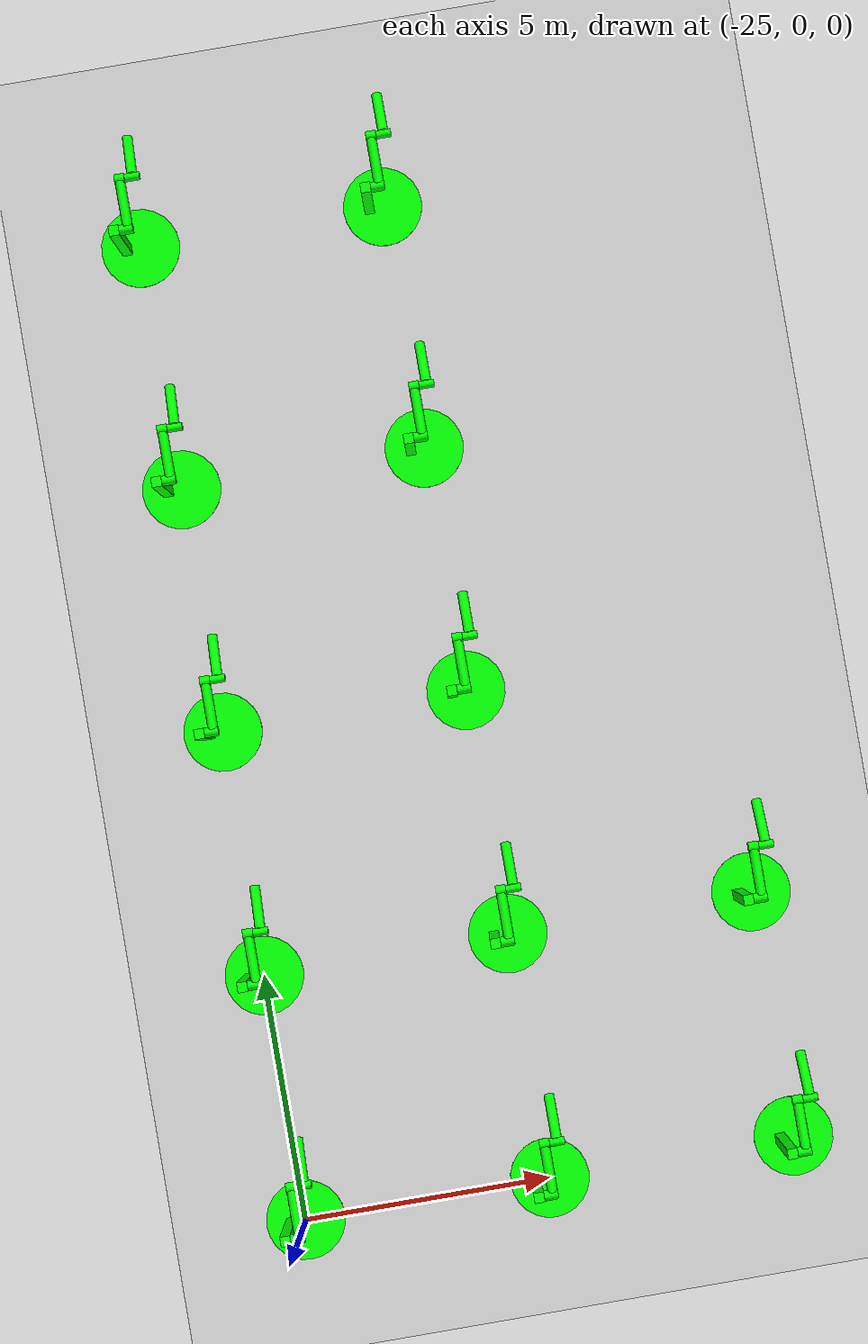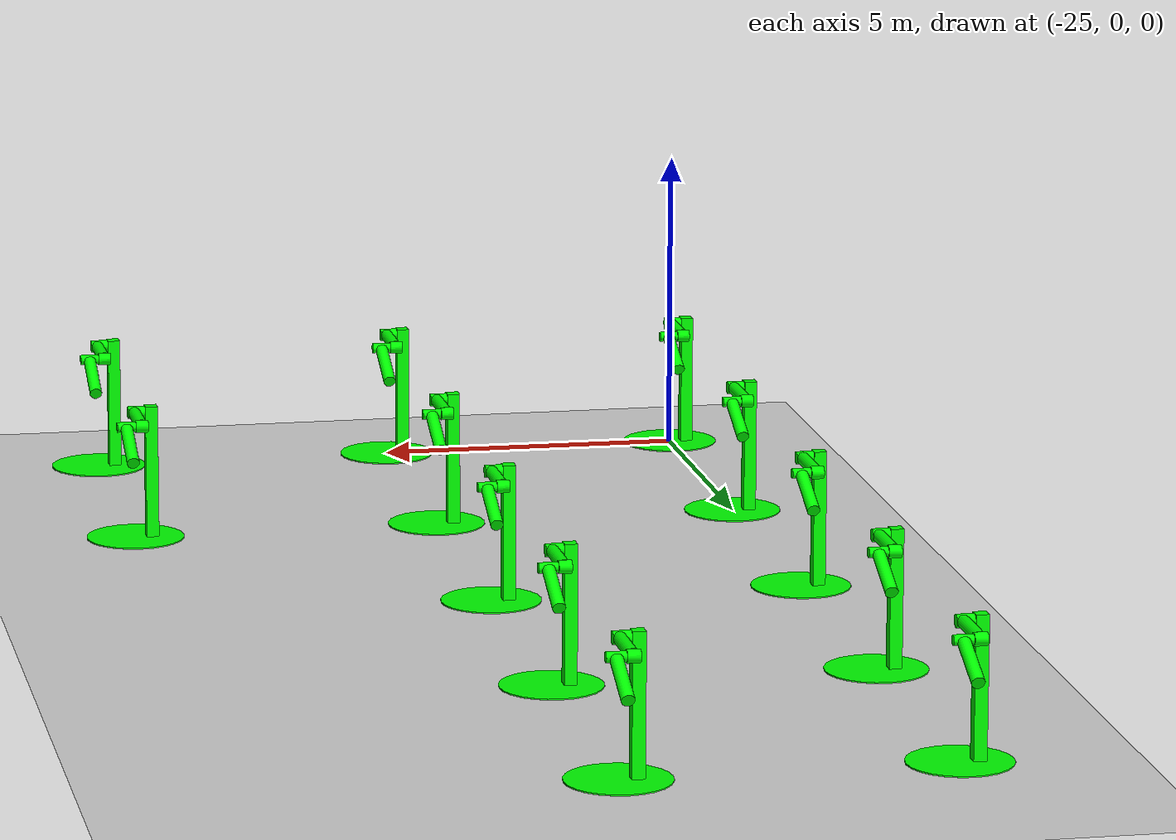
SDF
<sdf version="1.6">
 <world name="double_pendulums">
  <model name="ground_plane">
   <static>true</static>
   <link name="link">
    <collision name="collision">
     <geometry><plane><normal>0 0 1</normal><size>100 100</size></plane></geometry>
    </collision>
    <visual name="visual">
     <geometry><plane><normal>0 0 1</normal><size>100 100</size></plane></geometry>
     <material>
      <ambient>0.8 0.8 0.8 1</ambient>
      <diffuse>0.8 0.8 0.8 1</diffuse>
      <specular>0.8 0.8 0.8 1</specular>
     </material>
    </visual>
   </link>
  </model>
  <model name="dbl_pendulum_0">
   <pose>-25 0 0 0 0 0</pose>
   <link name="base">
    <inertial><mass>100</mass></inertial>
    <visual name="vis_plate_on_ground">
     <pose>0 0 0.01 0 0 0</pose>
     <geometry><cylinder><radius>0.8</radius><length>0.02</length></cylinder></geometry>
     <material><ambient>0 1 0 1</ambient><diffuse>0 1 0 1</diffuse><specular>0 1 0 1</specular></material>
    </visual>
    <visual name="vis_pole">
     <pose>-0.275 0 1.1 0 0 0</pose>
     <geometry><box><size>0.2 0.2 2.2</size></box></geometry>
     <material><ambient>0 1 0 1</ambient><diffuse>0 1 0 1</diffuse><specular>0 1 0 1</specular></material>
    </visual>
    <collision name="col_plate_on_ground">
     <pose>0 0 0.01 0 0 0</pose>
     <geometry><cylinder><radius>0.8</radius><length>0.02</length></cylinder></geometry>
    </collision>
    <collision name="col_pole">
     <pose>-0.275 0 1.1 0 0 0</pose>
     <geometry><box><size>0.2 0.2 2.2</size></box></geometry>
    </collision>
   </link>
   <link name="upper_link">
    <pose>0 0 2.1 -1.5708 0 0</pose>
    <inertial><pose>0 0 0.5 0 0 0</pose></inertial>
    <visual name="vis_upper_joint">
     <pose>-0.05 0 0 0 1.5708 0</pose>
     <geometry><cylinder><radius>0.1</radius><length>0.3</length></cylinder></geometry>
     <material><ambient>0 1 0 1</ambient><diffuse>0 1 0 1</diffuse><specular>0 1 0 1</specular></material>
    </visual>
    <visual name="vis_lower_joint">
     <pose>0 0 1.0 0 1.5708 0</pose>
     <geometry><cylinder><radius>0.1</radius><length>0.2</length></cylinder></geometry>
     <material><ambient>0 1 0 1</ambient><diffuse>0 1 0 1</diffuse><specular>0 1 0 1</specular></material>
    </visual>
    <visual name="vis_cylinder">
     <pose>0 0 0.5 0 0 0</pose>
     <geometry><cylinder><radius>0.1</radius><length>0.9</length></cylinder></geometry>
     <material><ambient>0 1 0 1</ambient><diffuse>0 1 0 1</diffuse><specular>0 1 0 1</specular></material>
    </visual>
    <collision name="col_upper_joint">
     <pose>-0.05 0 0 0 1.5708 0</pose>
     <geometry><cylinder><radius>0.1</radius><length>0.3</length></cylinder></geometry>
    </collision>
    <collision name="col_lower_joint">
     <pose>0 0 1.0 0 1.5708 0</pose>
     <geometry><cylinder><radius>0.1</radius><length>0.2</length></cylinder></geometry>
    </collision>
    <collision name="col_cylinder">
     <pose>0 0 0.5 0 0 0</pose>
     <geometry><cylinder><radius>0.1</radius><length>0.9</length></cylinder></geometry>
    </collision>
   </link>
   <link name="lower_link">
    <pose>0.25 1.0 2.1 -2 0 0</pose>
    <inertial><pose>0 0 0.5 0 0 0</pose></inertial>
    <visual name="vis_lower_joint">
     <pose>0 0 0 0 1.5708 0</pose>
     <geometry><cylinder><radius>0.08</radius><length>0.3</length></cylinder></geometry>
     <material><ambient>0 1 0 1</ambient><diffuse>0 1 0 1</diffuse><specular>0 1 0 1</specular></material>
    </visual>
    <visual name="vis_cylinder">
     <pose>0 0 0.5 0 0 0</pose>
     <geometry><cylinder><radius>0.1</radius><length>0.9</length></cylinder></geometry>
     <material><ambient>0 1 0 1</ambient><diffuse>0 1 0 1</diffuse><specular>0 1 0 1</specular></material>
    </visual>
    <collision name="col_lower_joint">
     <pose>0 0 0 0 1.5708 0</pose>
     <geometry><cylinder><radius>0.08</radius><length>0.3</length></cylinder></geometry>
    </collision>
    <collision name="col_cylinder">
     <pose>0 0 0.5 0 0 0</pose>
     <geometry><cylinder><radius>0.1</radius><length>0.9</length></cylinder></geometry>
    </collision>
   </link>
   <joint name="upper_joint" type="revolute">
    <parent>base</parent>
    <child>upper_link</child>
    <axis><xyz>1.0 0 0</xyz></axis>
   </joint>
   <joint name="lower_joint" type="revolute">
    <parent>upper_link</parent>
    <child>lower_link</child>
    <axis><xyz>1.0 0 0</xyz></axis>
   </joint>
  </model>
  <model name="dbl_pendulum_1">
   <pose>-20 0 0 0 0 0</pose>
   <link name="base">
    <inertial><mass>100</mass></inertial>
    <visual name="vis_plate_on_ground">
     <pose>0 0 0.01 0 0 0</pose>
     <geometry><cylinder><radius>0.8</radius><length>0.02</length></cylinder></geometry>
     <material><ambient>0 1 0 1</ambient><diffuse>0 1 0 1</diffuse><specular>0 1 0 1</specular></material>
    </visual>
    <visual name="vis_pole">
     <pose>-0.275 0 1.1 0 0 0</pose>
     <geometry><box><size>0.2 0.2 2.2</size></box></geometry>
     <material><ambient>0 1 0 1</ambient><diffuse>0 1 0 1</diffuse><specular>0 1 0 1</specular></material>
    </visual>
    <collision name="col_plate_on_ground">
     <pose>0 0 0.01 0 0 0</pose>
     <geometry><cylinder><radius>0.8</radius><length>0.02</length></cylinder></geometry>
    </collision>
    <collision name="col_pole">
     <pose>-0.275 0 1.1 0 0 0</pose>
     <geometry><box><size>0.2 0.2 2.2</size></box></geometry>
    </collision>
   </link>
   <link name="upper_link">
    <pose>0 0 2.1 -1.5708 0 0</pose>
    <inertial><pose>0 0 0.5 0 0 0</pose></inertial>
    <visual name="vis_upper_joint">
     <pose>-0.05 0 0 0 1.5708 0</pose>
     <geometry><cylinder><radius>0.1</radius><length>0.3</length></cylinder></geometry>
     <material><ambient>0 1 0 1</ambient><diffuse>0 1 0 1</diffuse><specular>0 1 0 1</specular></material>
    </visual>
    <visual name="vis_lower_joint">
     <pose>0 0 1.0 0 1.5708 0</pose>
     <geometry><cylinder><radius>0.1</radius><length>0.2</length></cylinder></geometry>
     <material><ambient>0 1 0 1</ambient><diffuse>0 1 0 1</diffuse><specular>0 1 0 1</specular></material>
    </visual>
    <visual name="vis_cylinder">
     <pose>0 0 0.5 0 0 0</pose>
     <geometry><cylinder><radius>0.1</radius><length>0.9</length></cylinder></geometry>
     <material><ambient>0 1 0 1</ambient><diffuse>0 1 0 1</diffuse><specular>0 1 0 1</specular></material>
    </visual>
    <collision name="col_upper_joint">
     <pose>-0.05 0 0 0 1.5708 0</pose>
     <geometry><cylinder><radius>0.1</radius><length>0.3</length></cylinder></geometry>
    </collision>
    <collision name="col_lower_joint">
     <pose>0 0 1.0 0 1.5708 0</pose>
     <geometry><cylinder><radius>0.1</radius><length>0.2</length></cylinder></geometry>
    </collision>
    <collision name="col_cylinder">
     <pose>0 0 0.5 0 0 0</pose>
     <geometry><cylinder><radius>0.1</radius><length>0.9</length></cylinder></geometry>
    </collision>
   </link>
   <link name="lower_link">
    <pose>0.25 1.0 2.1 -2 0 0</pose>
    <inertial><pose>0 0 0.5 0 0 0</pose></inertial>
    <visual name="vis_lower_joint">
     <pose>0 0 0 0 1.5708 0</pose>
     <geometry><cylinder><radius>0.08</radius><length>0.3</length></cylinder></geometry>
     <material><ambient>0 1 0 1</ambient><diffuse>0 1 0 1</diffuse><specular>0 1 0 1</specular></material>
    </visual>
    <visual name="vis_cylinder">
     <pose>0 0 0.5 0 0 0</pose>
     <geometry><cylinder><radius>0.1</radius><length>0.9</length></cylinder></geometry>
     <material><ambient>0 1 0 1</ambient><diffuse>0 1 0 1</diffuse><specular>0 1 0 1</specular></material>
    </visual>
    <collision name="col_lower_joint">
     <pose>0 0 0 0 1.5708 0</pose>
     <geometry><cylinder><radius>0.08</radius><length>0.3</length></cylinder></geometry>
    </collision>
    <collision name="col_cylinder">
     <pose>0 0 0.5 0 0 0</pose>
     <geometry><cylinder><radius>0.1</radius><length>0.9</length></cylinder></geometry>
    </collision>
   </link>
   <joint name="upper_joint" type="revolute">
    <parent>base</parent>
    <child>upper_link</child>
    <axis><xyz>1.0 0 0</xyz></axis>
   </joint>
   <joint name="lower_joint" type="revolute">
    <parent>upper_link</parent>
    <child>lower_link</child>
    <axis><xyz>1.0 0 0</xyz></axis>
   </joint>
  </model>
  <model name="dbl_pendulum_2">
   <pose>-15 0 0 0 0 0</pose>
   <link name="base">
    <inertial><mass>100</mass></inertial>
    <visual name="vis_plate_on_ground">
     <pose>0 0 0.01 0 0 0</pose>
     <geometry><cylinder><radius>0.8</radius><length>0.02</length></cylinder></geometry>
     <material><ambient>0 1 0 1</ambient><diffuse>0 1 0 1</diffuse><specular>0 1 0 1</specular></material>
    </visual>
    <visual name="vis_pole">
     <pose>-0.275 0 1.1 0 0 0</pose>
     <geometry><box><size>0.2 0.2 2.2</size></box></geometry>
     <material><ambient>0 1 0 1</ambient><diffuse>0 1 0 1</diffuse><specular>0 1 0 1</specular></material>
    </visual>
    <collision name="col_plate_on_ground">
     <pose>0 0 0.01 0 0 0</pose>
     <geometry><cylinder><radius>0.8</radius><length>0.02</length></cylinder></geometry>
    </collision>
    <collision name="col_pole">
     <pose>-0.275 0 1.1 0 0 0</pose>
     <geometry><box><size>0.2 0.2 2.2</size></box></geometry>
    </collision>
   </link>
   <link name="upper_link">
    <pose>0 0 2.1 -1.5708 0 0</pose>
    <inertial><pose>0 0 0.5 0 0 0</pose></inertial>
    <visual name="vis_upper_joint">
     <pose>-0.05 0 0 0 1.5708 0</pose>
     <geometry><cylinder><radius>0.1</radius><length>0.3</length></cylinder></geometry>
     <material><ambient>0 1 0 1</ambient><diffuse>0 1 0 1</diffuse><specular>0 1 0 1</specular></material>
    </visual>
    <visual name="vis_lower_joint">
     <pose>0 0 1.0 0 1.5708 0</pose>
     <geometry><cylinder><radius>0.1</radius><length>0.2</length></cylinder></geometry>
     <material><ambient>0 1 0 1</ambient><diffuse>0 1 0 1</diffuse><specular>0 1 0 1</specular></material>
    </visual>
    <visual name="vis_cylinder">
     <pose>0 0 0.5 0 0 0</pose>
     <geometry><cylinder><radius>0.1</radius><length>0.9</length></cylinder></geometry>
     <material><ambient>0 1 0 1</ambient><diffuse>0 1 0 1</diffuse><specular>0 1 0 1</specular></material>
    </visual>
    <collision name="col_upper_joint">
     <pose>-0.05 0 0 0 1.5708 0</pose>
     <geometry><cylinder><radius>0.1</radius><length>0.3</length></cylinder></geometry>
    </collision>
    <collision name="col_lower_joint">
     <pose>0 0 1.0 0 1.5708 0</pose>
     <geometry><cylinder><radius>0.1</radius><length>0.2</length></cylinder></geometry>
    </collision>
    <collision name="col_cylinder">
     <pose>0 0 0.5 0 0 0</pose>
     <geometry><cylinder><radius>0.1</radius><length>0.9</length></cylinder></geometry>
    </collision>
   </link>
   <link name="lower_link">
    <pose>0.25 1.0 2.1 -2 0 0</pose>
    <inertial><pose>0 0 0.5 0 0 0</pose></inertial>
    <visual name="vis_lower_joint">
     <pose>0 0 0 0 1.5708 0</pose>
     <geometry><cylinder><radius>0.08</radius><length>0.3</length></cylinder></geometry>
     <material><ambient>0 1 0 1</ambient><diffuse>0 1 0 1</diffuse><specular>0 1 0 1</specular></material>
    </visual>
    <visual name="vis_cylinder">
     <pose>0 0 0.5 0 0 0</pose>
     <geometry><cylinder><radius>0.1</radius><length>0.9</length></cylinder></geometry>
     <material><ambient>0 1 0 1</ambient><diffuse>0 1 0 1</diffuse><specular>0 1 0 1</specular></material>
    </visual>
    <collision name="col_lower_joint">
     <pose>0 0 0 0 1.5708 0</pose>
     <geometry><cylinder><radius>0.08</radius><length>0.3</length></cylinder></geometry>
    </collision>
    <collision name="col_cylinder">
     <pose>0 0 0.5 0 0 0</pose>
     <geometry><cylinder><radius>0.1</radius><length>0.9</length></cylinder></geometry>
    </collision>
   </link>
   <joint name="upper_joint" type="revolute">
    <parent>base</parent>
    <child>upper_link</child>
    <axis><xyz>1.0 0 0</xyz></axis>
   </joint>
   <joint name="lower_joint" type="revolute">
    <parent>upper_link</parent>
    <child>lower_link</child>
    <axis><xyz>1.0 0 0</xyz></axis>
   </joint>
  </model>
  <model name="dbl_pendulum_10">
   <pose>-25 5 0 0 0 0</pose>
   <link name="base">
    <inertial><mass>100</mass></inertial>
    <visual name="vis_plate_on_ground">
     <pose>0 0 0.01 0 0 0</pose>
     <geometry><cylinder><radius>0.8</radius><length>0.02</length></cylinder></geometry>
     <material><ambient>0 1 0 1</ambient><diffuse>0 1 0 1</diffuse><specular>0 1 0 1</specular></material>
    </visual>
    <visual name="vis_pole">
     <pose>-0.275 0 1.1 0 0 0</pose>
     <geometry><box><size>0.2 0.2 2.2</size></box></geometry>
     <material><ambient>0 1 0 1</ambient><diffuse>0 1 0 1</diffuse><specular>0 1 0 1</specular></material>
    </visual>
    <collision name="col_plate_on_ground">
     <pose>0 0 0.01 0 0 0</pose>
     <geometry><cylinder><radius>0.8</radius><length>0.02</length></cylinder></geometry>
    </collision>
    <collision name="col_pole">
     <pose>-0.275 0 1.1 0 0 0</pose>
     <geometry><box><size>0.2 0.2 2.2</size></box></geometry>
    </collision>
   </link>
   <link name="upper_link">
    <pose>0 0 2.1 -1.5708 0 0</pose>
    <inertial><pose>0 0 0.5 0 0 0</pose></inertial>
    <visual name="vis_upper_joint">
     <pose>-0.05 0 0 0 1.5708 0</pose>
     <geometry><cylinder><radius>0.1</radius><length>0.3</length></cylinder></geometry>
     <material><ambient>0 1 0 1</ambient><diffuse>0 1 0 1</diffuse><specular>0 1 0 1</specular></material>
    </visual>
    <visual name="vis_lower_joint">
     <pose>0 0 1.0 0 1.5708 0</pose>
     <geometry><cylinder><radius>0.1</radius><length>0.2</length></cylinder></geometry>
     <material><ambient>0 1 0 1</ambient><diffuse>0 1 0 1</diffuse><specular>0 1 0 1</specular></material>
    </visual>
    <visual name="vis_cylinder">
     <pose>0 0 0.5 0 0 0</pose>
     <geometry><cylinder><radius>0.1</radius><length>0.9</length></cylinder></geometry>
     <material><ambient>0 1 0 1</ambient><diffuse>0 1 0 1</diffuse><specular>0 1 0 1</specular></material>
    </visual>
    <collision name="col_upper_joint">
     <pose>-0.05 0 0 0 1.5708 0</pose>
     <geometry><cylinder><radius>0.1</radius><length>0.3</length></cylinder></geometry>
    </collision>
    <collision name="col_lower_joint">
     <pose>0 0 1.0 0 1.5708 0</pose>
     <geometry><cylinder><radius>0.1</radius><length>0.2</length></cylinder></geometry>
    </collision>
    <collision name="col_cylinder">
     <pose>0 0 0.5 0 0 0</pose>
     <geometry><cylinder><radius>0.1</radius><length>0.9</length></cylinder></geometry>
    </collision>
   </link>
   <link name="lower_link">
    <pose>0.25 1.0 2.1 -2 0 0</pose>
    <inertial><pose>0 0 0.5 0 0 0</pose></inertial>
    <visual name="vis_lower_joint">
     <pose>0 0 0 0 1.5708 0</pose>
     <geometry><cylinder><radius>0.08</radius><length>0.3</length></cylinder></geometry>
     <material><ambient>0 1 0 1</ambient><diffuse>0 1 0 1</diffuse><specular>0 1 0 1</specular></material>
    </visual>
    <visual name="vis_cylinder">
     <pose>0 0 0.5 0 0 0</pose>
     <geometry><cylinder><radius>0.1</radius><length>0.9</length></cylinder></geometry>
     <material><ambient>0 1 0 1</ambient><diffuse>0 1 0 1</diffuse><specular>0 1 0 1</specular></material>
    </visual>
    <collision name="col_lower_joint">
     <pose>0 0 0 0 1.5708 0</pose>
     <geometry><cylinder><radius>0.08</radius><length>0.3</length></cylinder></geometry>
    </collision>
    <collision name="col_cylinder">
     <pose>0 0 0.5 0 0 0</pose>
     <geometry><cylinder><radius>0.1</radius><length>0.9</length></cylinder></geometry>
    </collision>
   </link>
   <joint name="upper_joint" type="revolute">
    <parent>base</parent>
    <child>upper_link</child>
    <axis><xyz>1.0 0 0</xyz></axis>
   </joint>
   <joint name="lower_joint" type="revolute">
    <parent>upper_link</parent>
    <child>lower_link</child>
    <axis><xyz>1.0 0 0</xyz></axis>
   </joint>
  </model>
  <model name="dbl_pendulum_11">
   <pose>-20 5 0 0 0 0</pose>
   <link name="base">
    <inertial><mass>100</mass></inertial>
    <visual name="vis_plate_on_ground">
     <pose>0 0 0.01 0 0 0</pose>
     <geometry><cylinder><radius>0.8</radius><length>0.02</length></cylinder></geometry>
     <material><ambient>0 1 0 1</ambient><diffuse>0 1 0 1</diffuse><specular>0 1 0 1</specular></material>
    </visual>
    <visual name="vis_pole">
     <pose>-0.275 0 1.1 0 0 0</pose>
     <geometry><box><size>0.2 0.2 2.2</size></box></geometry>
     <material><ambient>0 1 0 1</ambient><diffuse>0 1 0 1</diffuse><specular>0 1 0 1</specular></material>
    </visual>
    <collision name="col_plate_on_ground">
     <pose>0 0 0.01 0 0 0</pose>
     <geometry><cylinder><radius>0.8</radius><length>0.02</length></cylinder></geometry>
    </collision>
    <collision name="col_pole">
     <pose>-0.275 0 1.1 0 0 0</pose>
     <geometry><box><size>0.2 0.2 2.2</size></box></geometry>
    </collision>
   </link>
   <link name="upper_link">
    <pose>0 0 2.1 -1.5708 0 0</pose>
    <inertial><pose>0 0 0.5 0 0 0</pose></inertial>
    <visual name="vis_upper_joint">
     <pose>-0.05 0 0 0 1.5708 0</pose>
     <geometry><cylinder><radius>0.1</radius><length>0.3</length></cylinder></geometry>
     <material><ambient>0 1 0 1</ambient><diffuse>0 1 0 1</diffuse><specular>0 1 0 1</specular></material>
    </visual>
    <visual name="vis_lower_joint">
     <pose>0 0 1.0 0 1.5708 0</pose>
     <geometry><cylinder><radius>0.1</radius><length>0.2</length></cylinder></geometry>
     <material><ambient>0 1 0 1</ambient><diffuse>0 1 0 1</diffuse><specular>0 1 0 1</specular></material>
    </visual>
    <visual name="vis_cylinder">
     <pose>0 0 0.5 0 0 0</pose>
     <geometry><cylinder><radius>0.1</radius><length>0.9</length></cylinder></geometry>
     <material><ambient>0 1 0 1</ambient><diffuse>0 1 0 1</diffuse><specular>0 1 0 1</specular></material>
    </visual>
    <collision name="col_upper_joint">
     <pose>-0.05 0 0 0 1.5708 0</pose>
     <geometry><cylinder><radius>0.1</radius><length>0.3</length></cylinder></geometry>
    </collision>
    <collision name="col_lower_joint">
     <pose>0 0 1.0 0 1.5708 0</pose>
     <geometry><cylinder><radius>0.1</radius><length>0.2</length></cylinder></geometry>
    </collision>
    <collision name="col_cylinder">
     <pose>0 0 0.5 0 0 0</pose>
     <geometry><cylinder><radius>0.1</radius><length>0.9</length></cylinder></geometry>
    </collision>
   </link>
   <link name="lower_link">
    <pose>0.25 1.0 2.1 -2 0 0</pose>
    <inertial><pose>0 0 0.5 0 0 0</pose></inertial>
    <visual name="vis_lower_joint">
     <pose>0 0 0 0 1.5708 0</pose>
     <geometry><cylinder><radius>0.08</radius><length>0.3</length></cylinder></geometry>
     <material><ambient>0 1 0 1</ambient><diffuse>0 1 0 1</diffuse><specular>0 1 0 1</specular></material>
    </visual>
    <visual name="vis_cylinder">
     <pose>0 0 0.5 0 0 0</pose>
     <geometry><cylinder><radius>0.1</radius><length>0.9</length></cylinder></geometry>
     <material><ambient>0 1 0 1</ambient><diffuse>0 1 0 1</diffuse><specular>0 1 0 1</specular></material>
    </visual>
    <collision name="col_lower_joint">
     <pose>0 0 0 0 1.5708 0</pose>
     <geometry><cylinder><radius>0.08</radius><length>0.3</length></cylinder></geometry>
    </collision>
    <collision name="col_cylinder">
     <pose>0 0 0.5 0 0 0</pose>
     <geometry><cylinder><radius>0.1</radius><length>0.9</length></cylinder></geometry>
    </collision>
   </link>
   <joint name="upper_joint" type="revolute">
    <parent>base</parent>
    <child>upper_link</child>
    <axis><xyz>1.0 0 0</xyz></axis>
   </joint>
   <joint name="lower_joint" type="revolute">
    <parent>upper_link</parent>
    <child>lower_link</child>
    <axis><xyz>1.0 0 0</xyz></axis>
   </joint>
  </model>
  <model name="dbl_pendulum_12">
   <pose>-15 5 0 0 0 0</pose>
   <link name="base">
    <inertial><mass>100</mass></inertial>
    <visual name="vis_plate_on_ground">
     <pose>0 0 0.01 0 0 0</pose>
     <geometry><cylinder><radius>0.8</radius><length>0.02</length></cylinder></geometry>
     <material><ambient>0 1 0 1</ambient><diffuse>0 1 0 1</diffuse><specular>0 1 0 1</specular></material>
    </visual>
    <visual name="vis_pole">
     <pose>-0.275 0 1.1 0 0 0</pose>
     <geometry><box><size>0.2 0.2 2.2</size></box></geometry>
     <material><ambient>0 1 0 1</ambient><diffuse>0 1 0 1</diffuse><specular>0 1 0 1</specular></material>
    </visual>
    <collision name="col_plate_on_ground">
     <pose>0 0 0.01 0 0 0</pose>
     <geometry><cylinder><radius>0.8</radius><length>0.02</length></cylinder></geometry>
    </collision>
    <collision name="col_pole">
     <pose>-0.275 0 1.1 0 0 0</pose>
     <geometry><box><size>0.2 0.2 2.2</size></box></geometry>
    </collision>
   </link>
   <link name="upper_link">
    <pose>0 0 2.1 -1.5708 0 0</pose>
    <inertial><pose>0 0 0.5 0 0 0</pose></inertial>
    <visual name="vis_upper_joint">
     <pose>-0.05 0 0 0 1.5708 0</pose>
     <geometry><cylinder><radius>0.1</radius><length>0.3</length></cylinder></geometry>
     <material><ambient>0 1 0 1</ambient><diffuse>0 1 0 1</diffuse><specular>0 1 0 1</specular></material>
    </visual>
    <visual name="vis_lower_joint">
     <pose>0 0 1.0 0 1.5708 0</pose>
     <geometry><cylinder><radius>0.1</radius><length>0.2</length></cylinder></geometry>
     <material><ambient>0 1 0 1</ambient><diffuse>0 1 0 1</diffuse><specular>0 1 0 1</specular></material>
    </visual>
    <visual name="vis_cylinder">
     <pose>0 0 0.5 0 0 0</pose>
     <geometry><cylinder><radius>0.1</radius><length>0.9</length></cylinder></geometry>
     <material><ambient>0 1 0 1</ambient><diffuse>0 1 0 1</diffuse><specular>0 1 0 1</specular></material>
    </visual>
    <collision name="col_upper_joint">
     <pose>-0.05 0 0 0 1.5708 0</pose>
     <geometry><cylinder><radius>0.1</radius><length>0.3</length></cylinder></geometry>
    </collision>
    <collision name="col_lower_joint">
     <pose>0 0 1.0 0 1.5708 0</pose>
     <geometry><cylinder><radius>0.1</radius><length>0.2</length></cylinder></geometry>
    </collision>
    <collision name="col_cylinder">
     <pose>0 0 0.5 0 0 0</pose>
     <geometry><cylinder><radius>0.1</radius><length>0.9</length></cylinder></geometry>
    </collision>
   </link>
   <link name="lower_link">
    <pose>0.25 1.0 2.1 -2 0 0</pose>
    <inertial><pose>0 0 0.5 0 0 0</pose></inertial>
    <visual name="vis_lower_joint">
     <pose>0 0 0 0 1.5708 0</pose>
     <geometry><cylinder><radius>0.08</radius><length>0.3</length></cylinder></geometry>
     <material><ambient>0 1 0 1</ambient><diffuse>0 1 0 1</diffuse><specular>0 1 0 1</specular></material>
    </visual>
    <visual name="vis_cylinder">
     <pose>0 0 0.5 0 0 0</pose>
     <geometry><cylinder><radius>0.1</radius><length>0.9</length></cylinder></geometry>
     <material><ambient>0 1 0 1</ambient><diffuse>0 1 0 1</diffuse><specular>0 1 0 1</specular></material>
    </visual>
    <collision name="col_lower_joint">
     <pose>0 0 0 0 1.5708 0</pose>
     <geometry><cylinder><radius>0.08</radius><length>0.3</length></cylinder></geometry>
    </collision>
    <collision name="col_cylinder">
     <pose>0 0 0.5 0 0 0</pose>
     <geometry><cylinder><radius>0.1</radius><length>0.9</length></cylinder></geometry>
    </collision>
   </link>
   <joint name="upper_joint" type="revolute">
    <parent>base</parent>
    <child>upper_link</child>
    <axis><xyz>1.0 0 0</xyz></axis>
   </joint>
   <joint name="lower_joint" type="revolute">
    <parent>upper_link</parent>
    <child>lower_link</child>
    <axis><xyz>1.0 0 0</xyz></axis>
   </joint>
  </model>
  <model name="dbl_pendulum_20">
   <pose>-25 10 0 0 0 0</pose>
   <link name="base">
    <inertial><mass>100</mass></inertial>
    <visual name="vis_plate_on_ground">
     <pose>0 0 0.01 0 0 0</pose>
     <geometry><cylinder><radius>0.8</radius><length>0.02</length></cylinder></geometry>
     <material><ambient>0 1 0 1</ambient><diffuse>0 1 0 1</diffuse><specular>0 1 0 1</specular></material>
    </visual>
    <visual name="vis_pole">
     <pose>-0.275 0 1.1 0 0 0</pose>
     <geometry><box><size>0.2 0.2 2.2</size></box></geometry>
     <material><ambient>0 1 0 1</ambient><diffuse>0 1 0 1</diffuse><specular>0 1 0 1</specular></material>
    </visual>
    <collision name="col_plate_on_ground">
     <pose>0 0 0.01 0 0 0</pose>
     <geometry><cylinder><radius>0.8</radius><length>0.02</length></cylinder></geometry>
    </collision>
    <collision name="col_pole">
     <pose>-0.275 0 1.1 0 0 0</pose>
     <geometry><box><size>0.2 0.2 2.2</size></box></geometry>
    </collision>
   </link>
   <link name="upper_link">
    <pose>0 0 2.1 -1.5708 0 0</pose>
    <inertial><pose>0 0 0.5 0 0 0</pose></inertial>
    <visual name="vis_upper_joint">
     <pose>-0.05 0 0 0 1.5708 0</pose>
     <geometry><cylinder><radius>0.1</radius><length>0.3</length></cylinder></geometry>
     <material><ambient>0 1 0 1</ambient><diffuse>0 1 0 1</diffuse><specular>0 1 0 1</specular></material>
    </visual>
    <visual name="vis_lower_joint">
     <pose>0 0 1.0 0 1.5708 0</pose>
     <geometry><cylinder><radius>0.1</radius><length>0.2</length></cylinder></geometry>
     <material><ambient>0 1 0 1</ambient><diffuse>0 1 0 1</diffuse><specular>0 1 0 1</specular></material>
    </visual>
    <visual name="vis_cylinder">
     <pose>0 0 0.5 0 0 0</pose>
     <geometry><cylinder><radius>0.1</radius><length>0.9</length></cylinder></geometry>
     <material><ambient>0 1 0 1</ambient><diffuse>0 1 0 1</diffuse><specular>0 1 0 1</specular></material>
    </visual>
    <collision name="col_upper_joint">
     <pose>-0.05 0 0 0 1.5708 0</pose>
     <geometry><cylinder><radius>0.1</radius><length>0.3</length></cylinder></geometry>
    </collision>
    <collision name="col_lower_joint">
     <pose>0 0 1.0 0 1.5708 0</pose>
     <geometry><cylinder><radius>0.1</radius><length>0.2</length></cylinder></geometry>
    </collision>
    <collision name="col_cylinder">
     <pose>0 0 0.5 0 0 0</pose>
     <geometry><cylinder><radius>0.1</radius><length>0.9</length></cylinder></geometry>
    </collision>
   </link>
   <link name="lower_link">
    <pose>0.25 1.0 2.1 -2 0 0</pose>
    <inertial><pose>0 0 0.5 0 0 0</pose></inertial>
    <visual name="vis_lower_joint">
     <pose>0 0 0 0 1.5708 0</pose>
     <geometry><cylinder><radius>0.08</radius><length>0.3</length></cylinder></geometry>
     <material><ambient>0 1 0 1</ambient><diffuse>0 1 0 1</diffuse><specular>0 1 0 1</specular></material>
    </visual>
    <visual name="vis_cylinder">
     <pose>0 0 0.5 0 0 0</pose>
     <geometry><cylinder><radius>0.1</radius><length>0.9</length></cylinder></geometry>
     <material><ambient>0 1 0 1</ambient><diffuse>0 1 0 1</diffuse><specular>0 1 0 1</specular></material>
    </visual>
    <collision name="col_lower_joint">
     <pose>0 0 0 0 1.5708 0</pose>
     <geometry><cylinder><radius>0.08</radius><length>0.3</length></cylinder></geometry>
    </collision>
    <collision name="col_cylinder">
     <pose>0 0 0.5 0 0 0</pose>
     <geometry><cylinder><radius>0.1</radius><length>0.9</length></cylinder></geometry>
    </collision>
   </link>
   <joint name="upper_joint" type="revolute">
    <parent>base</parent>
    <child>upper_link</child>
    <axis><xyz>1.0 0 0</xyz></axis>
   </joint>
   <joint name="lower_joint" type="revolute">
    <parent>upper_link</parent>
    <child>lower_link</child>
    <axis><xyz>1.0 0 0</xyz></axis>
   </joint>
  </model>
  <model name="dbl_pendulum_21">
   <pose>-20 10 0 0 0 0</pose>
   <link name="base">
    <inertial><mass>100</mass></inertial>
    <visual name="vis_plate_on_ground">
     <pose>0 0 0.01 0 0 0</pose>
     <geometry><cylinder><radius>0.8</radius><length>0.02</length></cylinder></geometry>
     <material><ambient>0 1 0 1</ambient><diffuse>0 1 0 1</diffuse><specular>0 1 0 1</specular></material>
    </visual>
    <visual name="vis_pole">
     <pose>-0.275 0 1.1 0 0 0</pose>
     <geometry><box><size>0.2 0.2 2.2</size></box></geometry>
     <material><ambient>0 1 0 1</ambient><diffuse>0 1 0 1</diffuse><specular>0 1 0 1</specular></material>
    </visual>
    <collision name="col_plate_on_ground">
     <pose>0 0 0.01 0 0 0</pose>
     <geometry><cylinder><radius>0.8</radius><length>0.02</length></cylinder></geometry>
    </collision>
    <collision name="col_pole">
     <pose>-0.275 0 1.1 0 0 0</pose>
     <geometry><box><size>0.2 0.2 2.2</size></box></geometry>
    </collision>
   </link>
   <link name="upper_link">
    <pose>0 0 2.1 -1.5708 0 0</pose>
    <inertial><pose>0 0 0.5 0 0 0</pose></inertial>
    <visual name="vis_upper_joint">
     <pose>-0.05 0 0 0 1.5708 0</pose>
     <geometry><cylinder><radius>0.1</radius><length>0.3</length></cylinder></geometry>
     <material><ambient>0 1 0 1</ambient><diffuse>0 1 0 1</diffuse><specular>0 1 0 1</specular></material>
    </visual>
    <visual name="vis_lower_joint">
     <pose>0 0 1.0 0 1.5708 0</pose>
     <geometry><cylinder><radius>0.1</radius><length>0.2</length></cylinder></geometry>
     <material><ambient>0 1 0 1</ambient><diffuse>0 1 0 1</diffuse><specular>0 1 0 1</specular></material>
    </visual>
    <visual name="vis_cylinder">
     <pose>0 0 0.5 0 0 0</pose>
     <geometry><cylinder><radius>0.1</radius><length>0.9</length></cylinder></geometry>
     <material><ambient>0 1 0 1</ambient><diffuse>0 1 0 1</diffuse><specular>0 1 0 1</specular></material>
    </visual>
    <collision name="col_upper_joint">
     <pose>-0.05 0 0 0 1.5708 0</pose>
     <geometry><cylinder><radius>0.1</radius><length>0.3</length></cylinder></geometry>
    </collision>
    <collision name="col_lower_joint">
     <pose>0 0 1.0 0 1.5708 0</pose>
     <geometry><cylinder><radius>0.1</radius><length>0.2</length></cylinder></geometry>
    </collision>
    <collision name="col_cylinder">
     <pose>0 0 0.5 0 0 0</pose>
     <geometry><cylinder><radius>0.1</radius><length>0.9</length></cylinder></geometry>
    </collision>
   </link>
   <link name="lower_link">
    <pose>0.25 1.0 2.1 -2 0 0</pose>
    <inertial><pose>0 0 0.5 0 0 0</pose></inertial>
    <visual name="vis_lower_joint">
     <pose>0 0 0 0 1.5708 0</pose>
     <geometry><cylinder><radius>0.08</radius><length>0.3</length></cylinder></geometry>
     <material><ambient>0 1 0 1</ambient><diffuse>0 1 0 1</diffuse><specular>0 1 0 1</specular></material>
    </visual>
    <visual name="vis_cylinder">
     <pose>0 0 0.5 0 0 0</pose>
     <geometry><cylinder><radius>0.1</radius><length>0.9</length></cylinder></geometry>
     <material><ambient>0 1 0 1</ambient><diffuse>0 1 0 1</diffuse><specular>0 1 0 1</specular></material>
    </visual>
    <collision name="col_lower_joint">
     <pose>0 0 0 0 1.5708 0</pose>
     <geometry><cylinder><radius>0.08</radius><length>0.3</length></cylinder></geometry>
    </collision>
    <collision name="col_cylinder">
     <pose>0 0 0.5 0 0 0</pose>
     <geometry><cylinder><radius>0.1</radius><length>0.9</length></cylinder></geometry>
    </collision>
   </link>
   <joint name="upper_joint" type="revolute">
    <parent>base</parent>
    <child>upper_link</child>
    <axis><xyz>1.0 0 0</xyz></axis>
   </joint>
   <joint name="lower_joint" type="revolute">
    <parent>upper_link</parent>
    <child>lower_link</child>
    <axis><xyz>1.0 0 0</xyz></axis>
   </joint>
  </model>
  <model name="dbl_pendulum_30">
   <pose>-25 15 0 0 0 0</pose>
   <link name="base">
    <inertial><mass>100</mass></inertial>
    <visual name="vis_plate_on_ground">
     <pose>0 0 0.01 0 0 0</pose>
     <geometry><cylinder><radius>0.8</radius><length>0.02</length></cylinder></geometry>
     <material><ambient>0 1 0 1</ambient><diffuse>0 1 0 1</diffuse><specular>0 1 0 1</specular></material>
    </visual>
    <visual name="vis_pole">
     <pose>-0.275 0 1.1 0 0 0</pose>
     <geometry><box><size>0.2 0.2 2.2</size></box></geometry>
     <material><ambient>0 1 0 1</ambient><diffuse>0 1 0 1</diffuse><specular>0 1 0 1</specular></material>
    </visual>
    <collision name="col_plate_on_ground">
     <pose>0 0 0.01 0 0 0</pose>
     <geometry><cylinder><radius>0.8</radius><length>0.02</length></cylinder></geometry>
    </collision>
    <collision name="col_pole">
     <pose>-0.275 0 1.1 0 0 0</pose>
     <geometry><box><size>0.2 0.2 2.2</size></box></geometry>
    </collision>
   </link>
   <link name="upper_link">
    <pose>0 0 2.1 -1.5708 0 0</pose>
    <inertial><pose>0 0 0.5 0 0 0</pose></inertial>
    <visual name="vis_upper_joint">
     <pose>-0.05 0 0 0 1.5708 0</pose>
     <geometry><cylinder><radius>0.1</radius><length>0.3</length></cylinder></geometry>
     <material><ambient>0 1 0 1</ambient><diffuse>0 1 0 1</diffuse><specular>0 1 0 1</specular></material>
    </visual>
    <visual name="vis_lower_joint">
     <pose>0 0 1.0 0 1.5708 0</pose>
     <geometry><cylinder><radius>0.1</radius><length>0.2</length></cylinder></geometry>
     <material><ambient>0 1 0 1</ambient><diffuse>0 1 0 1</diffuse><specular>0 1 0 1</specular></material>
    </visual>
    <visual name="vis_cylinder">
     <pose>0 0 0.5 0 0 0</pose>
     <geometry><cylinder><radius>0.1</radius><length>0.9</length></cylinder></geometry>
     <material><ambient>0 1 0 1</ambient><diffuse>0 1 0 1</diffuse><specular>0 1 0 1</specular></material>
    </visual>
    <collision name="col_upper_joint">
     <pose>-0.05 0 0 0 1.5708 0</pose>
     <geometry><cylinder><radius>0.1</radius><length>0.3</length></cylinder></geometry>
    </collision>
    <collision name="col_lower_joint">
     <pose>0 0 1.0 0 1.5708 0</pose>
     <geometry><cylinder><radius>0.1</radius><length>0.2</length></cylinder></geometry>
    </collision>
    <collision name="col_cylinder">
     <pose>0 0 0.5 0 0 0</pose>
     <geometry><cylinder><radius>0.1</radius><length>0.9</length></cylinder></geometry>
    </collision>
   </link>
   <link name="lower_link">
    <pose>0.25 1.0 2.1 -2 0 0</pose>
    <inertial><pose>0 0 0.5 0 0 0</pose></inertial>
    <visual name="vis_lower_joint">
     <pose>0 0 0 0 1.5708 0</pose>
     <geometry><cylinder><radius>0.08</radius><length>0.3</length></cylinder></geometry>
     <material><ambient>0 1 0 1</ambient><diffuse>0 1 0 1</diffuse><specular>0 1 0 1</specular></material>
    </visual>
    <visual name="vis_cylinder">
     <pose>0 0 0.5 0 0 0</pose>
     <geometry><cylinder><radius>0.1</radius><length>0.9</length></cylinder></geometry>
     <material><ambient>0 1 0 1</ambient><diffuse>0 1 0 1</diffuse><specular>0 1 0 1</specular></material>
    </visual>
    <collision name="col_lower_joint">
     <pose>0 0 0 0 1.5708 0</pose>
     <geometry><cylinder><radius>0.08</radius><length>0.3</length></cylinder></geometry>
    </collision>
    <collision name="col_cylinder">
     <pose>0 0 0.5 0 0 0</pose>
     <geometry><cylinder><radius>0.1</radius><length>0.9</length></cylinder></geometry>
    </collision>
   </link>
   <joint name="upper_joint" type="revolute">
    <parent>base</parent>
    <child>upper_link</child>
    <axis><xyz>1.0 0 0</xyz></axis>
   </joint>
   <joint name="lower_joint" type="revolute">
    <parent>upper_link</parent>
    <child>lower_link</child>
    <axis><xyz>1.0 0 0</xyz></axis>
   </joint>
  </model>
  <model name="dbl_pendulum_31">
   <pose>-20 15 0 0 0 0</pose>
   <link name="base">
    <inertial><mass>100</mass></inertial>
    <visual name="vis_plate_on_ground">
     <pose>0 0 0.01 0 0 0</pose>
     <geometry><cylinder><radius>0.8</radius><length>0.02</length></cylinder></geometry>
     <material><ambient>0 1 0 1</ambient><diffuse>0 1 0 1</diffuse><specular>0 1 0 1</specular></material>
    </visual>
    <visual name="vis_pole">
     <pose>-0.275 0 1.1 0 0 0</pose>
     <geometry><box><size>0.2 0.2 2.2</size></box></geometry>
     <material><ambient>0 1 0 1</ambient><diffuse>0 1 0 1</diffuse><specular>0 1 0 1</specular></material>
    </visual>
    <collision name="col_plate_on_ground">
     <pose>0 0 0.01 0 0 0</pose>
     <geometry><cylinder><radius>0.8</radius><length>0.02</length></cylinder></geometry>
    </collision>
    <collision name="col_pole">
     <pose>-0.275 0 1.1 0 0 0</pose>
     <geometry><box><size>0.2 0.2 2.2</size></box></geometry>
    </collision>
   </link>
   <link name="upper_link">
    <pose>0 0 2.1 -1.5708 0 0</pose>
    <inertial><pose>0 0 0.5 0 0 0</pose></inertial>
    <visual name="vis_upper_joint">
     <pose>-0.05 0 0 0 1.5708 0</pose>
     <geometry><cylinder><radius>0.1</radius><length>0.3</length></cylinder></geometry>
     <material><ambient>0 1 0 1</ambient><diffuse>0 1 0 1</diffuse><specular>0 1 0 1</specular></material>
    </visual>
    <visual name="vis_lower_joint">
     <pose>0 0 1.0 0 1.5708 0</pose>
     <geometry><cylinder><radius>0.1</radius><length>0.2</length></cylinder></geometry>
     <material><ambient>0 1 0 1</ambient><diffuse>0 1 0 1</diffuse><specular>0 1 0 1</specular></material>
    </visual>
    <visual name="vis_cylinder">
     <pose>0 0 0.5 0 0 0</pose>
     <geometry><cylinder><radius>0.1</radius><length>0.9</length></cylinder></geometry>
     <material><ambient>0 1 0 1</ambient><diffuse>0 1 0 1</diffuse><specular>0 1 0 1</specular></material>
    </visual>
    <collision name="col_upper_joint">
     <pose>-0.05 0 0 0 1.5708 0</pose>
     <geometry><cylinder><radius>0.1</radius><length>0.3</length></cylinder></geometry>
    </collision>
    <collision name="col_lower_joint">
     <pose>0 0 1.0 0 1.5708 0</pose>
     <geometry><cylinder><radius>0.1</radius><length>0.2</length></cylinder></geometry>
    </collision>
    <collision name="col_cylinder">
     <pose>0 0 0.5 0 0 0</pose>
     <geometry><cylinder><radius>0.1</radius><length>0.9</length></cylinder></geometry>
    </collision>
   </link>
   <link name="lower_link">
    <pose>0.25 1.0 2.1 -2 0 0</pose>
    <inertial><pose>0 0 0.5 0 0 0</pose></inertial>
    <visual name="vis_lower_joint">
     <pose>0 0 0 0 1.5708 0</pose>
     <geometry><cylinder><radius>0.08</radius><length>0.3</length></cylinder></geometry>
     <material><ambient>0 1 0 1</ambient><diffuse>0 1 0 1</diffuse><specular>0 1 0 1</specular></material>
    </visual>
    <visual name="vis_cylinder">
     <pose>0 0 0.5 0 0 0</pose>
     <geometry><cylinder><radius>0.1</radius><length>0.9</length></cylinder></geometry>
     <material><ambient>0 1 0 1</ambient><diffuse>0 1 0 1</diffuse><specular>0 1 0 1</specular></material>
    </visual>
    <collision name="col_lower_joint">
     <pose>0 0 0 0 1.5708 0</pose>
     <geometry><cylinder><radius>0.08</radius><length>0.3</length></cylinder></geometry>
    </collision>
    <collision name="col_cylinder">
     <pose>0 0 0.5 0 0 0</pose>
     <geometry><cylinder><radius>0.1</radius><length>0.9</length></cylinder></geometry>
    </collision>
   </link>
   <joint name="upper_joint" type="revolute">
    <parent>base</parent>
    <child>upper_link</child>
    <axis><xyz>1.0 0 0</xyz></axis>
   </joint>
   <joint name="lower_joint" type="revolute">
    <parent>upper_link</parent>
    <child>lower_link</child>
    <axis><xyz>1.0 0 0</xyz></axis>
   </joint>
  </model>
  <model name="dbl_pendulum_40">
   <pose>-25 20 0 0 0 0</pose>
   <link name="base">
    <inertial><mass>100</mass></inertial>
    <visual name="vis_plate_on_ground">
     <pose>0 0 0.01 0 0 0</pose>
     <geometry><cylinder><radius>0.8</radius><length>0.02</length></cylinder></geometry>
     <material><ambient>0 1 0 1</ambient><diffuse>0 1 0 1</diffuse><specular>0 1 0 1</specular></material>
    </visual>
    <visual name="vis_pole">
     <pose>-0.275 0 1.1 0 0 0</pose>
     <geometry><box><size>0.2 0.2 2.2</size></box></geometry>
     <material><ambient>0 1 0 1</ambient><diffuse>0 1 0 1</diffuse><specular>0 1 0 1</specular></material>
    </visual>
    <collision name="col_plate_on_ground">
     <pose>0 0 0.01 0 0 0</pose>
     <geometry><cylinder><radius>0.8</radius><length>0.02</length></cylinder></geometry>
    </collision>
    <collision name="col_pole">
     <pose>-0.275 0 1.1 0 0 0</pose>
     <geometry><box><size>0.2 0.2 2.2</size></box></geometry>
    </collision>
   </link>
   <link name="upper_link">
    <pose>0 0 2.1 -1.5708 0 0</pose>
    <inertial><pose>0 0 0.5 0 0 0</pose></inertial>
    <visual name="vis_upper_joint">
     <pose>-0.05 0 0 0 1.5708 0</pose>
     <geometry><cylinder><radius>0.1</radius><length>0.3</length></cylinder></geometry>
     <material><ambient>0 1 0 1</ambient><diffuse>0 1 0 1</diffuse><specular>0 1 0 1</specular></material>
    </visual>
    <visual name="vis_lower_joint">
     <pose>0 0 1.0 0 1.5708 0</pose>
     <geometry><cylinder><radius>0.1</radius><length>0.2</length></cylinder></geometry>
     <material><ambient>0 1 0 1</ambient><diffuse>0 1 0 1</diffuse><specular>0 1 0 1</specular></material>
    </visual>
    <visual name="vis_cylinder">
     <pose>0 0 0.5 0 0 0</pose>
     <geometry><cylinder><radius>0.1</radius><length>0.9</length></cylinder></geometry>
     <material><ambient>0 1 0 1</ambient><diffuse>0 1 0 1</diffuse><specular>0 1 0 1</specular></material>
    </visual>
    <collision name="col_upper_joint">
     <pose>-0.05 0 0 0 1.5708 0</pose>
     <geometry><cylinder><radius>0.1</radius><length>0.3</length></cylinder></geometry>
    </collision>
    <collision name="col_lower_joint">
     <pose>0 0 1.0 0 1.5708 0</pose>
     <geometry><cylinder><radius>0.1</radius><length>0.2</length></cylinder></geometry>
    </collision>
    <collision name="col_cylinder">
     <pose>0 0 0.5 0 0 0</pose>
     <geometry><cylinder><radius>0.1</radius><length>0.9</length></cylinder></geometry>
    </collision>
   </link>
   <link name="lower_link">
    <pose>0.25 1.0 2.1 -2 0 0</pose>
    <inertial><pose>0 0 0.5 0 0 0</pose></inertial>
    <visual name="vis_lower_joint">
     <pose>0 0 0 0 1.5708 0</pose>
     <geometry><cylinder><radius>0.08</radius><length>0.3</length></cylinder></geometry>
     <material><ambient>0 1 0 1</ambient><diffuse>0 1 0 1</diffuse><specular>0 1 0 1</specular></material>
    </visual>
    <visual name="vis_cylinder">
     <pose>0 0 0.5 0 0 0</pose>
     <geometry><cylinder><radius>0.1</radius><length>0.9</length></cylinder></geometry>
     <material><ambient>0 1 0 1</ambient><diffuse>0 1 0 1</diffuse><specular>0 1 0 1</specular></material>
    </visual>
    <collision name="col_lower_joint">
     <pose>0 0 0 0 1.5708 0</pose>
     <geometry><cylinder><radius>0.08</radius><length>0.3</length></cylinder></geometry>
    </collision>
    <collision name="col_cylinder">
     <pose>0 0 0.5 0 0 0</pose>
     <geometry><cylinder><radius>0.1</radius><length>0.9</length></cylinder></geometry>
    </collision>
   </link>
   <joint name="upper_joint" type="revolute">
    <parent>base</parent>
    <child>upper_link</child>
    <axis><xyz>1.0 0 0</xyz></axis>
   </joint>
   <joint name="lower_joint" type="revolute">
    <parent>upper_link</parent>
    <child>lower_link</child>
    <axis><xyz>1.0 0 0</xyz></axis>
   </joint>
  </model>
  <model name="dbl_pendulum_41">
   <pose>-20 20 0 0 0 0</pose>
   <link name="base">
    <inertial><mass>100</mass></inertial>
    <visual name="vis_plate_on_ground">
     <pose>0 0 0.01 0 0 0</pose>
     <geometry><cylinder><radius>0.8</radius><length>0.02</length></cylinder></geometry>
     <material><ambient>0 1 0 1</ambient><diffuse>0 1 0 1</diffuse><specular>0 1 0 1</specular></material>
    </visual>
    <visual name="vis_pole">
     <pose>-0.275 0 1.1 0 0 0</pose>
     <geometry><box><size>0.2 0.2 2.2</size></box></geometry>
     <material><ambient>0 1 0 1</ambient><diffuse>0 1 0 1</diffuse><specular>0 1 0 1</specular></material>
    </visual>
    <collision name="col_plate_on_ground">
     <pose>0 0 0.01 0 0 0</pose>
     <geometry><cylinder><radius>0.8</radius><length>0.02</length></cylinder></geometry>
    </collision>
    <collision name="col_pole">
     <pose>-0.275 0 1.1 0 0 0</pose>
     <geometry><box><size>0.2 0.2 2.2</size></box></geometry>
    </collision>
   </link>
   <link name="upper_link">
    <pose>0 0 2.1 -1.5708 0 0</pose>
    <inertial><pose>0 0 0.5 0 0 0</pose></inertial>
    <visual name="vis_upper_joint">
     <pose>-0.05 0 0 0 1.5708 0</pose>
     <geometry><cylinder><radius>0.1</radius><length>0.3</length></cylinder></geometry>
     <material><ambient>0 1 0 1</ambient><diffuse>0 1 0 1</diffuse><specular>0 1 0 1</specular></material>
    </visual>
    <visual name="vis_lower_joint">
     <pose>0 0 1.0 0 1.5708 0</pose>
     <geometry><cylinder><radius>0.1</radius><length>0.2</length></cylinder></geometry>
     <material><ambient>0 1 0 1</ambient><diffuse>0 1 0 1</diffuse><specular>0 1 0 1</specular></material>
    </visual>
    <visual name="vis_cylinder">
     <pose>0 0 0.5 0 0 0</pose>
     <geometry><cylinder><radius>0.1</radius><length>0.9</length></cylinder></geometry>
     <material><ambient>0 1 0 1</ambient><diffuse>0 1 0 1</diffuse><specular>0 1 0 1</specular></material>
    </visual>
    <collision name="col_upper_joint">
     <pose>-0.05 0 0 0 1.5708 0</pose>
     <geometry><cylinder><radius>0.1</radius><length>0.3</length></cylinder></geometry>
    </collision>
    <collision name="col_lower_joint">
     <pose>0 0 1.0 0 1.5708 0</pose>
     <geometry><cylinder><radius>0.1</radius><length>0.2</length></cylinder></geometry>
    </collision>
    <collision name="col_cylinder">
     <pose>0 0 0.5 0 0 0</pose>
     <geometry><cylinder><radius>0.1</radius><length>0.9</length></cylinder></geometry>
    </collision>
   </link>
   <link name="lower_link">
    <pose>0.25 1.0 2.1 -2 0 0</pose>
    <inertial><pose>0 0 0.5 0 0 0</pose></inertial>
    <visual name="vis_lower_joint">
     <pose>0 0 0 0 1.5708 0</pose>
     <geometry><cylinder><radius>0.08</radius><length>0.3</length></cylinder></geometry>
     <material><ambient>0 1 0 1</ambient><diffuse>0 1 0 1</diffuse><specular>0 1 0 1</specular></material>
    </visual>
    <visual name="vis_cylinder">
     <pose>0 0 0.5 0 0 0</pose>
     <geometry><cylinder><radius>0.1</radius><length>0.9</length></cylinder></geometry>
     <material><ambient>0 1 0 1</ambient><diffuse>0 1 0 1</diffuse><specular>0 1 0 1</specular></material>
    </visual>
    <collision name="col_lower_joint">
     <pose>0 0 0 0 1.5708 0</pose>
     <geometry><cylinder><radius>0.08</radius><length>0.3</length></cylinder></geometry>
    </collision>
    <collision name="col_cylinder">
     <pose>0 0 0.5 0 0 0</pose>
     <geometry><cylinder><radius>0.1</radius><length>0.9</length></cylinder></geometry>
    </collision>
   </link>
   <joint name="upper_joint" type="revolute">
    <parent>base</parent>
    <child>upper_link</child>
    <axis><xyz>1.0 0 0</xyz></axis>
   </joint>
   <joint name="lower_joint" type="revolute">
    <parent>upper_link</parent>
    <child>lower_link</child>
    <axis><xyz>1.0 0 0</xyz></axis>
   </joint>
  </model>
 </world>
</sdf>
